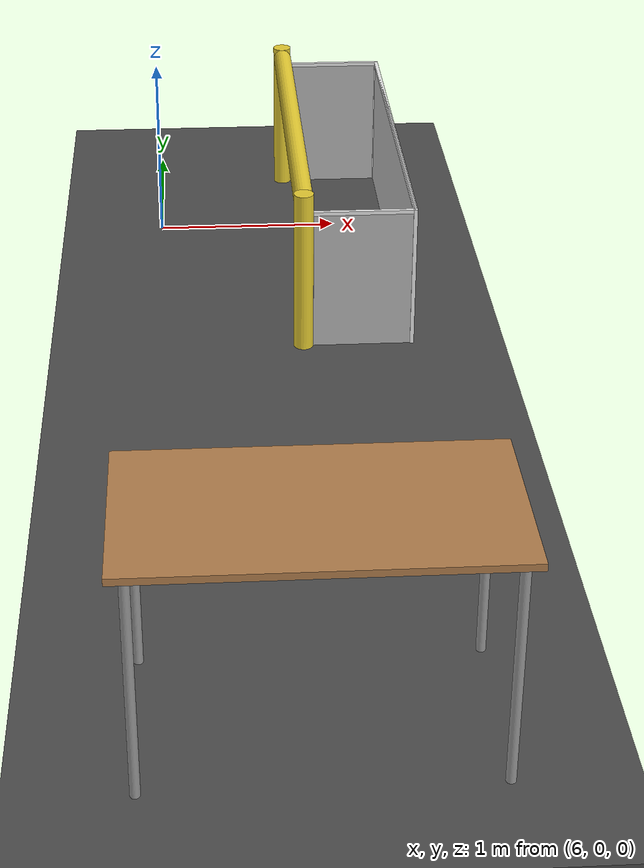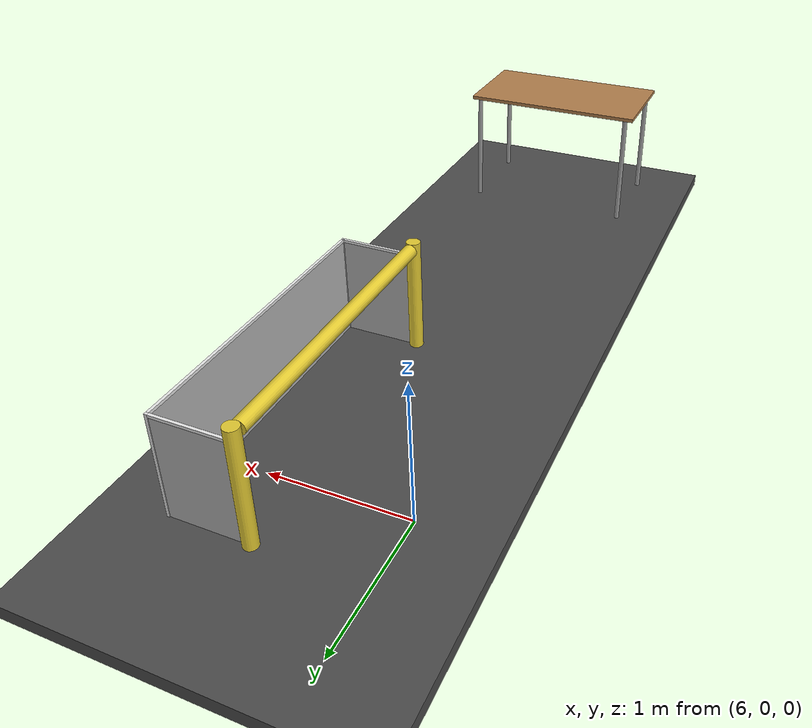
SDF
<sdf version="1.7">
 <world name="default">
  <light name="sun" type="directional">
   <pose>0 0 10 0 -0 0</pose>
   <diffuse>0.8 0.8 0.8 1</diffuse>
   <specular>0.2 0.2 0.2 1</specular>
   <attenuation>
    <range>1000</range>
    <constant>0.9</constant>
    <linear>0.01</linear>
    <quadratic>0.001</quadratic>
   </attenuation>
   <direction>-0.5 0.1 -0.9</direction>
   <spot><inner_angle>0</inner_angle><outer_angle>0</outer_angle><falloff>0</falloff></spot>
  </light>
  <model name="ground_plane">
   <static>1</static>
   <link name="link">
    <collision name="collision">
     <geometry><plane><normal>0 0 1</normal><size>100 100</size></plane></geometry>
     <surface>
      <contact><collide_bitmask>65535</collide_bitmask></contact>
      <friction><ode><mu>100</mu><mu2>50</mu2></ode></friction>
     </surface>
    </collision>
    <visual name="visual">
     <cast_shadows>0</cast_shadows>
     <geometry><plane><normal>0 0 1</normal><size>100 100</size></plane></geometry>
     <material>
      <script><uri>file://media/materials/scripts/gazebo.material</uri><name>Gazebo/Grey</name></script>
     </material>
    </visual>
   </link>
  </model>
  <gravity>0 0 -9.8</gravity>
  <magnetic_field>6e-06 2.3e-05 -4.2e-05</magnetic_field>
  <atmosphere type="adiabatic"/>
  <physics type="ode">
   <max_step_size>0.001</max_step_size>
   <real_time_factor>1</real_time_factor>
   <real_time_update_rate>1000</real_time_update_rate>
  </physics>
  <scene><ambient>0.4 0.4 0.4 1</ambient><background>0.7 0.7 0.7 1</background><shadows>1</shadows></scene>
  <spherical_coordinates>
   <surface_model>EARTH_WGS84</surface_model>
   <latitude_deg>0</latitude_deg>
   <longitude_deg>0</longitude_deg>
   <elevation>0</elevation>
   <heading_deg>0</heading_deg>
  </spherical_coordinates>
  <model name="asphalt_plane">
   <static>1</static>
   <link name="link">
    <collision name="collision"><geometry><box><size>20 20 0.1</size></box></geometry></collision>
    <visual name="visual">
     <cast_shadows>0</cast_shadows>
     <geometry><box><size>20 20 0.1</size></box></geometry>
     <material>
      <script>
       <uri>model://asphalt_plane/materials/scripts</uri>
       <uri>model://asphalt_plane/materials/textures</uri>
       <name>vrc/asphalt</name>
      </script>
     </material>
    </visual>
   </link>
   <pose>-0.260613 0.271756 -0.005813 0 -0 0</pose>
  </model>
  <model name="table">
   <static>1</static>
   <link name="link">
    <collision name="surface">
     <pose>0 0 1 0 -0 0</pose>
     <geometry><box><size>1.5 0.8 0.03</size></box></geometry>
     <surface><friction><ode><mu>0.6</mu><mu2>0.6</mu2></ode></friction></surface>
    </collision>
    <visual name="visual1">
     <pose>0 0 1 0 -0 0</pose>
     <geometry><box><size>1.5 0.8 0.03</size></box></geometry>
     <material>
      <script><uri>file://media/materials/scripts/gazebo.material</uri><name>Gazebo/Wood</name></script>
     </material>
    </visual>
    <collision name="front_left_leg">
     <pose>0.68 0.38 0.5 0 -0 0</pose>
     <geometry><cylinder><radius>0.02</radius><length>1</length></cylinder></geometry>
    </collision>
    <visual name="front_left_leg">
     <pose>0.68 0.38 0.5 0 -0 0</pose>
     <geometry><cylinder><radius>0.02</radius><length>1</length></cylinder></geometry>
     <material>
      <script><uri>file://media/materials/scripts/gazebo.material</uri><name>Gazebo/Grey</name></script>
     </material>
    </visual>
    <collision name="front_right_leg">
     <pose>0.68 -0.38 0.5 0 -0 0</pose>
     <geometry><cylinder><radius>0.02</radius><length>1</length></cylinder></geometry>
    </collision>
    <visual name="front_right_leg">
     <pose>0.68 -0.38 0.5 0 -0 0</pose>
     <geometry><cylinder><radius>0.02</radius><length>1</length></cylinder></geometry>
     <material>
      <script><uri>file://media/materials/scripts/gazebo.material</uri><name>Gazebo/Grey</name></script>
     </material>
    </visual>
    <collision name="back_right_leg">
     <pose>-0.68 -0.38 0.5 0 -0 0</pose>
     <geometry><cylinder><radius>0.02</radius><length>1</length></cylinder></geometry>
    </collision>
    <visual name="back_right_leg">
     <pose>-0.68 -0.38 0.5 0 -0 0</pose>
     <geometry><cylinder><radius>0.02</radius><length>1</length></cylinder></geometry>
     <material>
      <script><uri>file://media/materials/scripts/gazebo.material</uri><name>Gazebo/Grey</name></script>
     </material>
    </visual>
    <collision name="back_left_leg">
     <pose>-0.68 0.38 0.5 0 -0 0</pose>
     <geometry><cylinder><radius>0.02</radius><length>1</length></cylinder></geometry>
    </collision>
    <visual name="back_left_leg">
     <pose>-0.68 0.38 0.5 0 -0 0</pose>
     <geometry><cylinder><radius>0.02</radius><length>1</length></cylinder></geometry>
     <material>
      <script><uri>file://media/materials/scripts/gazebo.material</uri><name>Gazebo/Grey</name></script>
     </material>
    </visual>
   </link>
   <pose>6.60632 -4.46184 0 0 -0 0</pose>
  </model>
  <model name="robocup_3d_goal">
   <static>1</static>
   <link name="left_post">
    <pose>0 1.05 0.45 0 -0 0</pose>
    <collision name="collision">
     <geometry><cylinder><radius>0.05</radius><length>0.9</length></cylinder></geometry>
    </collision>
    <visual name="visual">
     <geometry><cylinder><radius>0.05</radius><length>0.9</length></cylinder></geometry>
     <material>
      <script><uri>file://media/materials/scripts/gazebo.material</uri><name>Gazebo/ZincYellow</name></script>
     </material>
    </visual>
   </link>
   <link name="left_support_horiz_lower">
    <pose>0.3 1.05 0.01 0 -0 0</pose>
    <collision name="collision"><geometry><box><size>0.5 0.02 0.02</size></box></geometry></collision>
    <visual name="visual">
     <geometry><box><size>0.5 0.02 0.02</size></box></geometry>
     <material>
      <script><uri>file://media/materials/scripts/gazebo.material</uri><name>Gazebo/White</name></script>
     </material>
    </visual>
   </link>
   <link name="left_support_horiz_upper">
    <pose>0.3 1.05 0.79 0 -0 0</pose>
    <collision name="collision"><geometry><box><size>0.5 0.02 0.02</size></box></geometry></collision>
    <visual name="visual">
     <geometry><box><size>0.5 0.02 0.02</size></box></geometry>
     <material>
      <script><uri>file://media/materials/scripts/gazebo.material</uri><name>Gazebo/White</name></script>
     </material>
    </visual>
   </link>
   <link name="left_support_vertical">
    <pose>0.56 1.05 0.4 3.14159 1.57079 3.14159</pose>
    <collision name="collision"><geometry><box><size>0.8 0.02 0.02</size></box></geometry></collision>
    <visual name="visual">
     <geometry><box><size>0.8 0.02 0.02</size></box></geometry>
     <material>
      <script><uri>file://media/materials/scripts/gazebo.material</uri><name>Gazebo/White</name></script>
     </material>
    </visual>
   </link>
   <link name="right_support_horiz_lower">
    <pose>0.3 -1.05 0.01 0 -0 0</pose>
    <collision name="collision"><geometry><box><size>0.5 0.02 0.02</size></box></geometry></collision>
    <visual name="visual">
     <geometry><box><size>0.5 0.02 0.02</size></box></geometry>
     <material>
      <script><uri>file://media/materials/scripts/gazebo.material</uri><name>Gazebo/White</name></script>
     </material>
    </visual>
   </link>
   <link name="right_support_horiz_upper">
    <pose>0.3 -1.05 0.79 0 -0 0</pose>
    <collision name="collision"><geometry><box><size>0.5 0.02 0.02</size></box></geometry></collision>
    <visual name="visual">
     <geometry><box><size>0.5 0.02 0.02</size></box></geometry>
     <material>
      <script><uri>file://media/materials/scripts/gazebo.material</uri><name>Gazebo/White</name></script>
     </material>
    </visual>
   </link>
   <link name="right_support_vertical">
    <pose>0.56 -1.05 0.4 3.14159 1.57079 3.14159</pose>
    <collision name="collision"><geometry><box><size>0.8 0.02 0.02</size></box></geometry></collision>
    <visual name="visual">
     <geometry><box><size>0.8 0.02 0.02</size></box></geometry>
     <material>
      <script><uri>file://media/materials/scripts/gazebo.material</uri><name>Gazebo/White</name></script>
     </material>
    </visual>
   </link>
   <link name="center_support_horiz_lower">
    <pose>0.56 0 0.01 3.14159 1.57079 3.14159</pose>
    <collision name="collision"><geometry><box><size>0.02 2.08 0.02</size></box></geometry></collision>
    <visual name="visual">
     <geometry><box><size>0.02 2.08 0.02</size></box></geometry>
     <material>
      <script><uri>file://media/materials/scripts/gazebo.material</uri><name>Gazebo/White</name></script>
     </material>
    </visual>
   </link>
   <link name="center_support_horiz_upper">
    <pose>0.56 0 0.79 3.14159 1.57079 3.14159</pose>
    <collision name="collision"><geometry><box><size>0.02 2.08 0.02</size></box></geometry></collision>
    <visual name="visual">
     <geometry><box><size>0.02 2.08 0.02</size></box></geometry>
     <material>
      <script><uri>file://media/materials/scripts/gazebo.material</uri><name>Gazebo/White</name></script>
     </material>
    </visual>
   </link>
   <link name="right_post">
    <pose>0 -1.05 0.45 0 -0 0</pose>
    <collision name="collision">
     <geometry><cylinder><radius>0.05</radius><length>0.9</length></cylinder></geometry>
    </collision>
    <visual name="visual">
     <geometry><cylinder><radius>0.05</radius><length>0.9</length></cylinder></geometry>
     <material>
      <script><uri>file://media/materials/scripts/gazebo.material</uri><name>Gazebo/ZincYellow</name></script>
     </material>
    </visual>
   </link>
   <link name="crossbar">
    <pose>0 0 0.85 1.57 1.57 0</pose>
    <collision name="collision">
     <geometry><cylinder><radius>0.05</radius><length>2</length></cylinder></geometry>
    </collision>
    <visual name="visual">
     <geometry><cylinder><radius>0.05</radius><length>2</length></cylinder></geometry>
     <material>
      <script><uri>file://media/materials/scripts/gazebo.material</uri><name>Gazebo/ZincYellow</name></script>
     </material>
    </visual>
   </link>
   <link name="center_net">
    <pose>0.56 0 0.4 0 -0 0</pose>
    <collision name="collision"><geometry><box><size>0.01 2.1 0.8</size></box></geometry></collision>
    <visual name="visual">
     <geometry><box><size>0.01 2.1 0.8</size></box></geometry>
     <material>
      <script>
       <uri>model://robocup09_spl_field/materials/scripts/</uri>
       <uri>model://robocup09_spl_field/materials/textures/</uri>
       <name>RoboCup/Net</name>
      </script>
     </material>
    </visual>
   </link>
   <link name="left_net">
    <pose>0.3 1.05 0.4 0 -0 0</pose>
    <collision name="collision"><geometry><box><size>0.5 0.01 0.76</size></box></geometry></collision>
    <visual name="visual">
     <geometry><box><size>0.5 0.01 0.76</size></box></geometry>
     <material>
      <script>
       <uri>model://robocup09_spl_field/materials/scripts/</uri>
       <uri>model://robocup09_spl_field/materials/textures/</uri>
       <name>RoboCup/Net</name>
      </script>
     </material>
    </visual>
   </link>
   <link name="right_net">
    <pose>0.3 -1.05 0.4 0 -0 0</pose>
    <collision name="collision"><geometry><box><size>0.5 0.01 0.76</size></box></geometry></collision>
    <visual name="visual">
     <geometry><box><size>0.5 0.01 0.76</size></box></geometry>
     <material>
      <script>
       <uri>model://robocup09_spl_field/materials/scripts/</uri>
       <uri>model://robocup09_spl_field/materials/textures/</uri>
       <name>RoboCup/Net</name>
      </script>
     </material>
    </visual>
   </link>
   <pose>6.73592 -0.496206 0 0 -0 0</pose>
  </model>
 </world>
</sdf>
